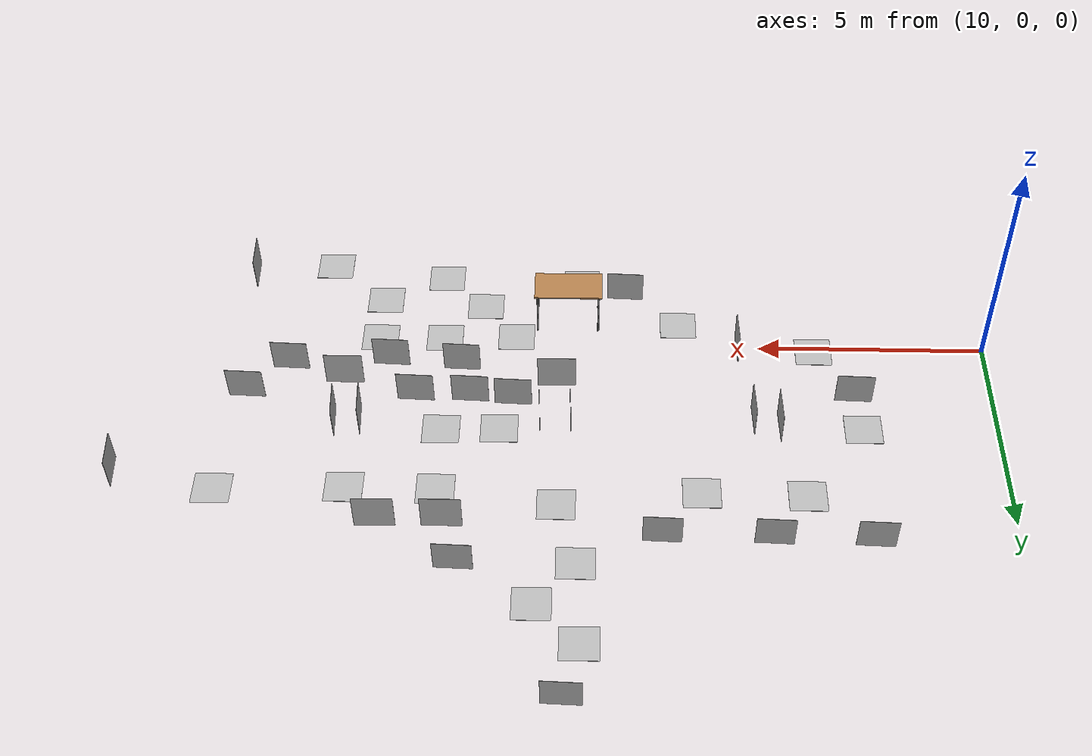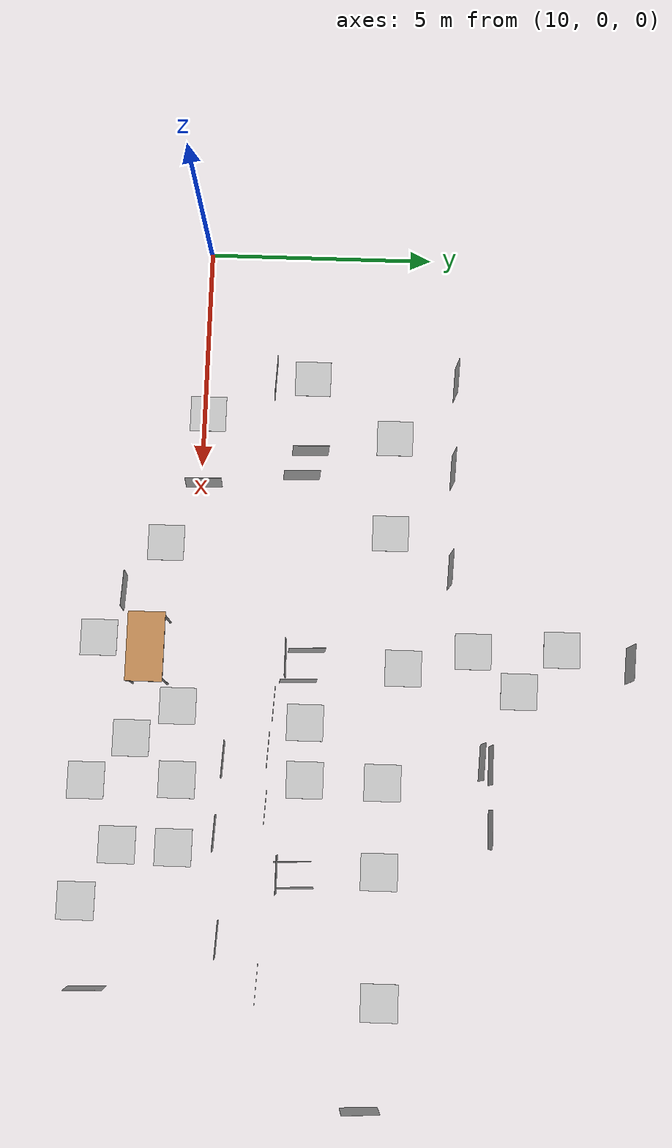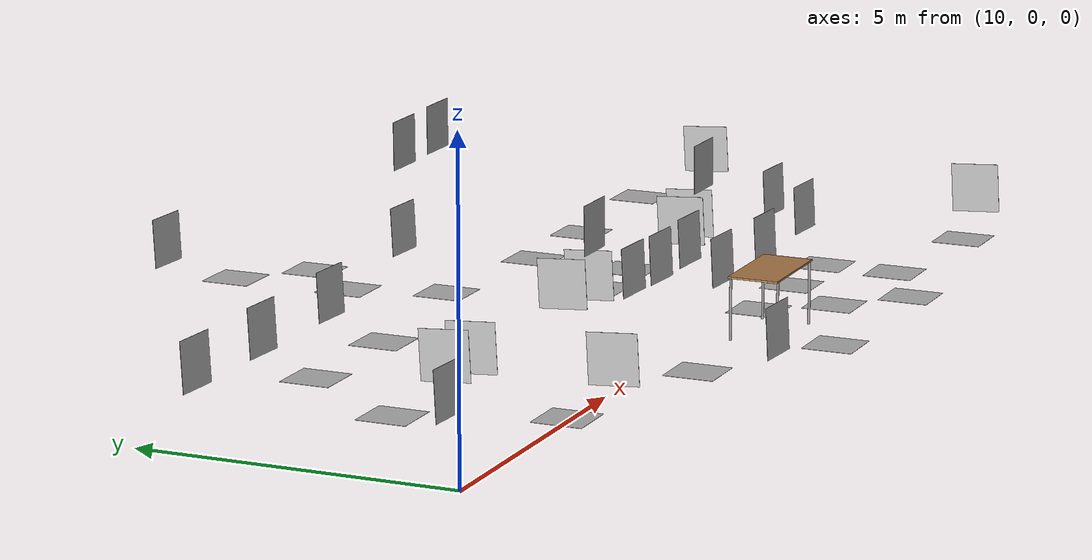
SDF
<sdf version="1.6">
 <world name="factory">
  <model name="table">
   <static>1</static>
   <link name="link">
    <collision name="surface">
     <pose>0 0 1 0 -0 0</pose>
     <geometry><box><size>1.5 0.8 0.03</size></box></geometry>
     <surface><friction><ode><mu>0.6</mu><mu2>0.6</mu2></ode></friction></surface>
    </collision>
    <visual name="visual1">
     <pose>0 0 1 0 -0 0</pose>
     <geometry><box><size>1.5 0.8 0.03</size></box></geometry>
     <material>
      <script><uri>file://media/materials/scripts/gazebo.material</uri><name>Gazebo/Wood</name></script>
     </material>
    </visual>
    <collision name="front_left_leg">
     <pose>0.68 0.38 0.5 0 -0 0</pose>
     <geometry><cylinder><radius>0.02</radius><length>1</length></cylinder></geometry>
    </collision>
    <visual name="front_left_leg">
     <pose>0.68 0.38 0.5 0 -0 0</pose>
     <geometry><cylinder><radius>0.02</radius><length>1</length></cylinder></geometry>
     <material>
      <script><uri>file://media/materials/scripts/gazebo.material</uri><name>Gazebo/Grey</name></script>
     </material>
    </visual>
    <collision name="front_right_leg">
     <pose>0.68 -0.38 0.5 0 -0 0</pose>
     <geometry><cylinder><radius>0.02</radius><length>1</length></cylinder></geometry>
    </collision>
    <visual name="front_right_leg">
     <pose>0.68 -0.38 0.5 0 -0 0</pose>
     <geometry><cylinder><radius>0.02</radius><length>1</length></cylinder></geometry>
     <material>
      <script><uri>file://media/materials/scripts/gazebo.material</uri><name>Gazebo/Grey</name></script>
     </material>
    </visual>
    <collision name="back_right_leg">
     <pose>-0.68 -0.38 0.5 0 -0 0</pose>
     <geometry><cylinder><radius>0.02</radius><length>1</length></cylinder></geometry>
    </collision>
    <visual name="back_right_leg">
     <pose>-0.68 -0.38 0.5 0 -0 0</pose>
     <geometry><cylinder><radius>0.02</radius><length>1</length></cylinder></geometry>
     <material>
      <script><uri>file://media/materials/scripts/gazebo.material</uri><name>Gazebo/Grey</name></script>
     </material>
    </visual>
    <collision name="back_left_leg">
     <pose>-0.68 0.38 0.5 0 -0 0</pose>
     <geometry><cylinder><radius>0.02</radius><length>1</length></cylinder></geometry>
    </collision>
    <visual name="back_left_leg">
     <pose>-0.68 0.38 0.5 0 -0 0</pose>
     <geometry><cylinder><radius>0.02</radius><length>1</length></cylinder></geometry>
     <material>
      <script><uri>file://media/materials/scripts/gazebo.material</uri><name>Gazebo/Grey</name></script>
     </material>
    </visual>
   </link>
   <pose>19.256 -0.907717 0 0 -0 0</pose>
  </model>
  <model name="kalibr_tag_clone_clone_clone">
   <static>1</static>
   <link name="link">
    <inertial>
     <mass>0.1</mass>
     <inertia>
      <ixx>0.000166667</ixx>
      <iyy>0.000166667</iyy>
      <izz>0.000166667</izz>
      <ixy>0</ixy>
      <ixz>0</ixz>
      <iyz>0</iyz>
     </inertia>
    </inertial>
    <collision name="collision"><geometry><box><size>0.8 0.8 0.005</size></box></geometry></collision>
    <visual name="visual">
     <geometry><box><size>0.8 0.8 0.005</size></box></geometry>
     <material>
      <script>
       <uri>model://kalibr_tag/materials/scripts</uri>
       <uri>model://kalibr_tag/materials/textures</uri>
       <name>Kalibr_tag/Diffuse</name>
      </script>
     </material>
    </visual>
   </link>
   <pose>28.7132 3.94409 0.427439 1.58264 0.057467 1.61346</pose>
  </model>
  <model name="kalibr_tag_clone_clone_clone_clone">
   <static>1</static>
   <link name="link">
    <inertial>
     <mass>0.1</mass>
     <inertia>
      <ixx>0.000166667</ixx>
      <iyy>0.000166667</iyy>
      <izz>0.000166667</izz>
      <ixy>0</ixy>
      <ixz>0</ixz>
      <iyz>0</iyz>
     </inertia>
    </inertial>
    <collision name="collision"><geometry><box><size>0.8 0.8 0.005</size></box></geometry></collision>
    <visual name="visual">
     <geometry><box><size>0.8 0.8 0.005</size></box></geometry>
     <material>
      <script>
       <uri>model://kalibr_tag/materials/scripts</uri>
       <uri>model://kalibr_tag/materials/textures</uri>
       <name>Kalibr_tag/Diffuse</name>
      </script>
     </material>
    </visual>
   </link>
   <pose>24.2288 2.429 0.42669 1.58264 0.057467 1.61346</pose>
  </model>
  <model name="kalibr_tag_clone_0_clone_clone_clone_0">
   <static>1</static>
   <link name="link">
    <inertial>
     <mass>0.1</mass>
     <inertia>
      <ixx>0.000166667</ixx>
      <iyy>0.000166667</iyy>
      <izz>0.000166667</izz>
      <ixy>0</ixy>
      <ixz>0</ixz>
      <iyz>0</iyz>
     </inertia>
    </inertial>
    <collision name="collision"><geometry><box><size>0.8 0.8 0.005</size></box></geometry></collision>
    <visual name="visual">
     <geometry><box><size>0.8 0.8 0.005</size></box></geometry>
     <material>
      <script>
       <uri>model://kalibr_tag/materials/scripts</uri>
       <uri>model://kalibr_tag/materials/textures</uri>
       <name>Kalibr_tag/Diffuse</name>
      </script>
     </material>
    </visual>
   </link>
   <pose>19.4255 4.62272 -0.000701 0 -0 0</pose>
  </model>
  <model name="kalibr_tag_clone_0_clone_clone_clone_1">
   <static>1</static>
   <link name="link">
    <inertial>
     <mass>0.1</mass>
     <inertia>
      <ixx>0.000166667</ixx>
      <iyy>0.000166667</iyy>
      <izz>0.000166667</izz>
      <ixy>0</ixy>
      <ixz>0</ixz>
      <iyz>0</iyz>
     </inertia>
    </inertial>
    <collision name="collision"><geometry><box><size>0.8 0.8 0.005</size></box></geometry></collision>
    <visual name="visual">
     <geometry><box><size>0.8 0.8 0.005</size></box></geometry>
     <material>
      <script>
       <uri>model://kalibr_tag/materials/scripts</uri>
       <uri>model://kalibr_tag/materials/textures</uri>
       <name>Kalibr_tag/Diffuse</name>
      </script>
     </material>
    </visual>
   </link>
   <pose>26.5857 4.30103 -0.000701 0 -0 0</pose>
  </model>
  <model name="kalibr_tag_clone_clone_clone_clone_0">
   <static>1</static>
   <link name="link">
    <inertial>
     <mass>0.1</mass>
     <inertia>
      <ixx>0.000166667</ixx>
      <iyy>0.000166667</iyy>
      <izz>0.000166667</izz>
      <ixy>0</ixy>
      <ixz>0</ixz>
      <iyz>0</iyz>
     </inertia>
    </inertial>
    <collision name="collision"><geometry><box><size>0.8 0.8 0.005</size></box></geometry></collision>
    <visual name="visual">
     <geometry><box><size>0.8 0.8 0.005</size></box></geometry>
     <material>
      <script>
       <uri>model://kalibr_tag/materials/scripts</uri>
       <uri>model://kalibr_tag/materials/textures</uri>
       <name>Kalibr_tag/Diffuse</name>
      </script>
     </material>
    </visual>
   </link>
   <pose>26.2036 1.70677 0.447006 1.51246 0.006312 -0.053047</pose>
  </model>
  <model name="kalibr_tag_clone_0_clone_clone_clone_0_clone">
   <static>1</static>
   <link name="link">
    <inertial>
     <mass>0.1</mass>
     <inertia>
      <ixx>0.000166667</ixx>
      <iyy>0.000166667</iyy>
      <izz>0.000166667</izz>
      <ixy>0</ixy>
      <ixz>0</ixz>
      <iyz>0</iyz>
     </inertia>
    </inertial>
    <collision name="collision"><geometry><box><size>0.8 0.8 0.005</size></box></geometry></collision>
    <visual name="visual">
     <geometry><box><size>0.8 0.8 0.005</size></box></geometry>
     <material>
      <script>
       <uri>model://kalibr_tag/materials/scripts</uri>
       <uri>model://kalibr_tag/materials/textures</uri>
       <name>Kalibr_tag/Diffuse</name>
      </script>
     </material>
    </visual>
   </link>
   <pose>14.2182 4.30383 -0.000701 0 -0 0</pose>
  </model>
  <model name="kalibr_tag_clone_clone_clone_clone_clone_clone_clone_4">
   <static>1</static>
   <link name="link">
    <inertial>
     <mass>0.1</mass>
     <inertia>
      <ixx>0.000166667</ixx>
      <iyy>0.000166667</iyy>
      <izz>0.000166667</izz>
      <ixy>0</ixy>
      <ixz>0</ixz>
      <iyz>0</iyz>
     </inertia>
    </inertial>
    <collision name="collision"><geometry><box><size>0.8 0.8 0.005</size></box></geometry></collision>
    <visual name="visual">
     <geometry><box><size>0.8 0.8 0.005</size></box></geometry>
     <material>
      <script>
       <uri>model://kalibr_tag/materials/scripts</uri>
       <uri>model://kalibr_tag/materials/textures</uri>
       <name>Kalibr_tag/Diffuse</name>
      </script>
     </material>
    </visual>
   </link>
   <pose>26.3847 -1.80032 0.78584 1.58128 0.057725 1.58982</pose>
  </model>
  <model name="kalibr_tag_clone_0_clone_clone_clone_4_clone_1">
   <static>1</static>
   <link name="link">
    <inertial>
     <mass>0.1</mass>
     <inertia>
      <ixx>0.000166667</ixx>
      <iyy>0.000166667</iyy>
      <izz>0.000166667</izz>
      <ixy>0</ixy>
      <ixz>0</ixz>
      <iyz>0</iyz>
     </inertia>
    </inertial>
    <collision name="collision"><geometry><box><size>0.8 0.8 0.005</size></box></geometry></collision>
    <visual name="visual">
     <geometry><box><size>0.8 0.8 0.005</size></box></geometry>
     <material>
      <script>
       <uri>model://kalibr_tag/materials/scripts</uri>
       <uri>model://kalibr_tag/materials/textures</uri>
       <name>Kalibr_tag/Diffuse</name>
      </script>
     </material>
    </visual>
   </link>
   <pose>23.4666 -0.22493 -0.000701 0 -0 0</pose>
  </model>
  <model name="kalibr_tag_clone_clone_clone_clone_0_clone">
   <static>1</static>
   <link name="link">
    <inertial>
     <mass>0.1</mass>
     <inertia>
      <ixx>0.000166667</ixx>
      <iyy>0.000166667</iyy>
      <izz>0.000166667</izz>
      <ixy>0</ixy>
      <ixz>0</ixz>
      <iyz>0</iyz>
     </inertia>
    </inertial>
    <collision name="collision"><geometry><box><size>0.8 0.8 0.005</size></box></geometry></collision>
    <visual name="visual">
     <geometry><box><size>0.8 0.8 0.005</size></box></geometry>
     <material>
      <script>
       <uri>model://kalibr_tag/materials/scripts</uri>
       <uri>model://kalibr_tag/materials/textures</uri>
       <name>Kalibr_tag/Diffuse</name>
      </script>
     </material>
    </visual>
   </link>
   <pose>22.5233 1.74624 0.441118 1.51246 0.006312 -0.053047</pose>
  </model>
  <model name="kalibr_tag_clone_clone_clone_clone_clone_1">
   <static>1</static>
   <link name="link">
    <inertial>
     <mass>0.1</mass>
     <inertia>
      <ixx>0.000166667</ixx>
      <iyy>0.000166667</iyy>
      <izz>0.000166667</izz>
      <ixy>0</ixy>
      <ixz>0</ixz>
      <iyz>0</iyz>
     </inertia>
    </inertial>
    <collision name="collision"><geometry><box><size>0.8 0.8 0.005</size></box></geometry></collision>
    <visual name="visual">
     <geometry><box><size>0.8 0.8 0.005</size></box></geometry>
     <material>
      <script>
       <uri>model://kalibr_tag/materials/scripts</uri>
       <uri>model://kalibr_tag/materials/textures</uri>
       <name>Kalibr_tag/Diffuse</name>
      </script>
     </material>
    </visual>
   </link>
   <pose>19.8233 2.34669 0.42669 1.58264 0.057467 1.61346</pose>
  </model>
  <model name="kalibr_tag_clone_0_clone_clone_clone_8_clone">
   <static>1</static>
   <link name="link">
    <inertial>
     <mass>0.1</mass>
     <inertia>
      <ixx>0.000166667</ixx>
      <iyy>0.000166667</iyy>
      <izz>0.000166667</izz>
      <ixy>0</ixy>
      <ixz>0</ixz>
      <iyz>0</iyz>
     </inertia>
    </inertial>
    <collision name="collision"><geometry><box><size>0.8 0.8 0.005</size></box></geometry></collision>
    <visual name="visual">
     <geometry><box><size>0.8 0.8 0.005</size></box></geometry>
     <material>
      <script>
       <uri>model://kalibr_tag/materials/scripts</uri>
       <uri>model://kalibr_tag/materials/textures</uri>
       <name>Kalibr_tag/Diffuse</name>
      </script>
     </material>
    </visual>
   </link>
   <pose>13.7783 0.077556 -0.000701 0 -0 0</pose>
  </model>
  <model name="kalibr_tag_clone_clone_clone_clone_0_clone_clone">
   <static>1</static>
   <link name="link">
    <inertial>
     <mass>0.1</mass>
     <inertia>
      <ixx>0.000166667</ixx>
      <iyy>0.000166667</iyy>
      <izz>0.000166667</izz>
      <ixy>0</ixy>
      <ixz>0</ixz>
      <iyz>0</iyz>
     </inertia>
    </inertial>
    <collision name="collision"><geometry><box><size>0.8 0.8 0.005</size></box></geometry></collision>
    <visual name="visual">
     <geometry><box><size>0.8 0.8 0.005</size></box></geometry>
     <material>
      <script>
       <uri>model://kalibr_tag/materials/scripts</uri>
       <uri>model://kalibr_tag/materials/textures</uri>
       <name>Kalibr_tag/Diffuse</name>
      </script>
     </material>
    </visual>
   </link>
   <pose>21.5696 0.796001 0.441118 1.51246 0.006312 -0.053047</pose>
  </model>
  <model name="kalibr_tag_clone_0_clone_clone_clone_4_clone_3">
   <static>1</static>
   <link name="link">
    <inertial>
     <mass>0.1</mass>
     <inertia>
      <ixx>0.000166667</ixx>
      <iyy>0.000166667</iyy>
      <izz>0.000166667</izz>
      <ixy>0</ixy>
      <ixz>0</ixz>
      <iyz>0</iyz>
     </inertia>
    </inertial>
    <collision name="collision"><geometry><box><size>0.8 0.8 0.005</size></box></geometry></collision>
    <visual name="visual">
     <geometry><box><size>0.8 0.8 0.005</size></box></geometry>
     <material>
      <script>
       <uri>model://kalibr_tag/materials/scripts</uri>
       <uri>model://kalibr_tag/materials/textures</uri>
       <name>Kalibr_tag/Diffuse</name>
      </script>
     </material>
    </visual>
   </link>
   <pose>21.1404 -1.26221 0.010014 0 -0 0</pose>
  </model>
  <model name="kalibr_tag_clone_0_clone_clone_clone_clone_7">
   <static>1</static>
   <link name="link">
    <inertial>
     <mass>0.1</mass>
     <inertia>
      <ixx>0.000166667</ixx>
      <iyy>0.000166667</iyy>
      <izz>0.000166667</izz>
      <ixy>0</ixy>
      <ixz>0</ixz>
      <iyz>0</iyz>
     </inertia>
    </inertial>
    <collision name="collision"><geometry><box><size>0.8 0.8 0.005</size></box></geometry></collision>
    <visual name="visual">
     <geometry><box><size>0.8 0.8 0.005</size></box></geometry>
     <material>
      <script>
       <uri>model://kalibr_tag/materials/scripts</uri>
       <uri>model://kalibr_tag/materials/textures</uri>
       <name>Kalibr_tag/Diffuse</name>
      </script>
     </material>
    </visual>
   </link>
   <pose>21.9413 4.23978 -0.000701 0 -0 0</pose>
  </model>
  <model name="kalibr_tag_clone_0_clone_clone_clone_clone_8">
   <static>1</static>
   <link name="link">
    <inertial>
     <mass>0.1</mass>
     <inertia>
      <ixx>0.000166667</ixx>
      <iyy>0.000166667</iyy>
      <izz>0.000166667</izz>
      <ixy>0</ixy>
      <ixz>0</ixz>
      <iyz>0</iyz>
     </inertia>
    </inertial>
    <collision name="collision"><geometry><box><size>0.8 0.8 0.005</size></box></geometry></collision>
    <visual name="visual">
     <geometry><box><size>0.8 0.8 0.005</size></box></geometry>
     <material>
      <script>
       <uri>model://kalibr_tag/materials/scripts</uri>
       <uri>model://kalibr_tag/materials/textures</uri>
       <name>Kalibr_tag/Diffuse</name>
      </script>
     </material>
    </visual>
   </link>
   <pose>23.8494 4.22056 -0.000701 0 -0 0</pose>
  </model>
  <model name="kalibr_tag_clone_0_clone_clone_clone_clone_9">
   <static>1</static>
   <link name="link">
    <inertial>
     <mass>0.1</mass>
     <inertia>
      <ixx>0.000166667</ixx>
      <iyy>0.000166667</iyy>
      <izz>0.000166667</izz>
      <ixy>0</ixy>
      <ixz>0</ixz>
      <iyz>0</iyz>
     </inertia>
    </inertial>
    <collision name="collision"><geometry><box><size>0.8 0.8 0.005</size></box></geometry></collision>
    <visual name="visual">
     <geometry><box><size>0.8 0.8 0.005</size></box></geometry>
     <material>
      <script>
       <uri>model://kalibr_tag/materials/scripts</uri>
       <uri>model://kalibr_tag/materials/textures</uri>
       <name>Kalibr_tag/Diffuse</name>
      </script>
     </material>
    </visual>
   </link>
   <pose>16.4107 4.26115 -0.000701 0 -0 0</pose>
  </model>
  <model name="kalibr_tag_clone_0_clone_clone_clone_7_clone_5">
   <static>1</static>
   <link name="link">
    <inertial>
     <mass>0.1</mass>
     <inertia>
      <ixx>0.000166667</ixx>
      <iyy>0.000166667</iyy>
      <izz>0.000166667</izz>
      <ixy>0</ixy>
      <ixz>0</ixz>
      <iyz>0</iyz>
     </inertia>
    </inertial>
    <collision name="collision"><geometry><box><size>0.8 0.8 0.005</size></box></geometry></collision>
    <visual name="visual">
     <geometry><box><size>0.8 0.8 0.005</size></box></geometry>
     <material>
      <script>
       <uri>model://kalibr_tag/materials/scripts</uri>
       <uri>model://kalibr_tag/materials/textures</uri>
       <name>Kalibr_tag/Diffuse</name>
      </script>
     </material>
    </visual>
   </link>
   <pose>12.885 2.41278 -0.000701 0 -0 0</pose>
  </model>
  <model name="kalibr_tag_clone_0_clone_clone_clone_7_clone_6">
   <static>1</static>
   <link name="link">
    <inertial>
     <mass>0.1</mass>
     <inertia>
      <ixx>0.000166667</ixx>
      <iyy>0.000166667</iyy>
      <izz>0.000166667</izz>
      <ixy>0</ixy>
      <ixz>0</ixz>
      <iyz>0</iyz>
     </inertia>
    </inertial>
    <collision name="collision"><geometry><box><size>0.8 0.8 0.005</size></box></geometry></collision>
    <visual name="visual">
     <geometry><box><size>0.8 0.8 0.005</size></box></geometry>
     <material>
      <script>
       <uri>model://kalibr_tag/materials/scripts</uri>
       <uri>model://kalibr_tag/materials/textures</uri>
       <name>Kalibr_tag/Diffuse</name>
      </script>
     </material>
    </visual>
   </link>
   <pose>21.9335 2.55086 -0.000701 0 -0 0</pose>
  </model>
  <model name="kalibr_tag_clone_0_clone_clone_clone_7_clone_7">
   <static>1</static>
   <link name="link">
    <inertial>
     <mass>0.1</mass>
     <inertia>
      <ixx>0.000166667</ixx>
      <iyy>0.000166667</iyy>
      <izz>0.000166667</izz>
      <ixy>0</ixy>
      <ixz>0</ixz>
      <iyz>0</iyz>
     </inertia>
    </inertial>
    <collision name="collision"><geometry><box><size>0.8 0.8 0.005</size></box></geometry></collision>
    <visual name="visual">
     <geometry><box><size>0.8 0.8 0.005</size></box></geometry>
     <material>
      <script>
       <uri>model://kalibr_tag/materials/scripts</uri>
       <uri>model://kalibr_tag/materials/textures</uri>
       <name>Kalibr_tag/Diffuse</name>
      </script>
     </material>
    </visual>
   </link>
   <pose>20.6861 2.51192 -0.000701 0 -0 0</pose>
  </model>
  <model name="kalibr_tag_clone_clone_clone_clone_clone_1_clone">
   <static>1</static>
   <link name="link">
    <inertial>
     <mass>0.1</mass>
     <inertia>
      <ixx>0.000166667</ixx>
      <iyy>0.000166667</iyy>
      <izz>0.000166667</izz>
      <ixy>0</ixy>
      <ixz>0</ixz>
      <iyz>0</iyz>
     </inertia>
    </inertial>
    <collision name="collision"><geometry><box><size>0.8 0.8 0.005</size></box></geometry></collision>
    <visual name="visual">
     <geometry><box><size>0.8 0.8 0.005</size></box></geometry>
     <material>
      <script>
       <uri>model://kalibr_tag/materials/scripts</uri>
       <uri>model://kalibr_tag/materials/textures</uri>
       <name>Kalibr_tag/Diffuse</name>
      </script>
     </material>
    </visual>
   </link>
   <pose>23.6804 2.36835 0.42669 1.58264 0.057467 1.61346</pose>
  </model>
  <model name="kalibr_tag_clone_0_clone_clone_clone_clone_10_clone_14">
   <static>1</static>
   <link name="link">
    <inertial>
     <mass>0.1</mass>
     <inertia>
      <ixx>0.000166667</ixx>
      <iyy>0.000166667</iyy>
      <izz>0.000166667</izz>
      <ixy>0</ixy>
      <ixz>0</ixz>
      <iyz>0</iyz>
     </inertia>
    </inertial>
    <collision name="collision"><geometry><box><size>0.8 0.8 0.005</size></box></geometry></collision>
    <visual name="visual">
     <geometry><box><size>0.8 0.8 0.005</size></box></geometry>
     <material>
      <script>
       <uri>model://kalibr_tag/materials/scripts</uri>
       <uri>model://kalibr_tag/materials/textures</uri>
       <name>Kalibr_tag/Diffuse</name>
      </script>
     </material>
    </visual>
   </link>
   <pose>16.7712 -0.722978 -0.000701 0 -0 0</pose>
  </model>
  <model name="kalibr_tag_clone_0_clone_clone_clone_clone_10_clone_30">
   <static>1</static>
   <link name="link">
    <inertial>
     <mass>0.1</mass>
     <inertia>
      <ixx>0.000166667</ixx>
      <iyy>0.000166667</iyy>
      <izz>0.000166667</izz>
      <ixy>0</ixy>
      <ixz>0</ixz>
      <iyz>0</iyz>
     </inertia>
    </inertial>
    <collision name="collision"><geometry><box><size>0.8 0.8 0.005</size></box></geometry></collision>
    <visual name="visual">
     <geometry><box><size>0.8 0.8 0.005</size></box></geometry>
     <material>
      <script>
       <uri>model://kalibr_tag/materials/scripts</uri>
       <uri>model://kalibr_tag/materials/textures</uri>
       <name>Kalibr_tag/Diffuse</name>
      </script>
     </material>
    </visual>
   </link>
   <pose>23.4454 -1.44308 -0.000701 0 -0 0</pose>
  </model>
  <model name="kalibr_tag_clone_clone_clone_clone_0_clone_clone_clone">
   <static>1</static>
   <link name="link">
    <inertial>
     <mass>0.1</mass>
     <inertia>
      <ixx>0.000166667</ixx>
      <iyy>0.000166667</iyy>
      <izz>0.000166667</izz>
      <ixy>0</ixy>
      <ixz>0</ixz>
      <iyz>0</iyz>
     </inertia>
    </inertial>
    <collision name="collision"><geometry><box><size>0.8 0.8 0.005</size></box></geometry></collision>
    <visual name="visual">
     <geometry><box><size>0.8 0.8 0.005</size></box></geometry>
     <material>
      <script>
       <uri>model://kalibr_tag/materials/scripts</uri>
       <uri>model://kalibr_tag/materials/textures</uri>
       <name>Kalibr_tag/Diffuse</name>
      </script>
     </material>
    </visual>
   </link>
   <pose>17.966 -1.52317 0.441118 1.51246 0.006312 -0.053047</pose>
  </model>
  <model name="kalibr_tag_clone_0_clone_clone_clone_4_clone_3_clone_0">
   <static>1</static>
   <link name="link">
    <inertial>
     <mass>0.1</mass>
     <inertia>
      <ixx>0.000166667</ixx>
      <iyy>0.000166667</iyy>
      <izz>0.000166667</izz>
      <ixy>0</ixy>
      <ixz>0</ixz>
      <iyz>0</iyz>
     </inertia>
    </inertial>
    <collision name="collision"><geometry><box><size>0.8 0.8 0.005</size></box></geometry></collision>
    <visual name="visual">
     <geometry><box><size>0.8 0.8 0.005</size></box></geometry>
     <material>
      <script>
       <uri>model://kalibr_tag/materials/scripts</uri>
       <uri>model://kalibr_tag/materials/textures</uri>
       <name>Kalibr_tag/Diffuse</name>
      </script>
     </material>
    </visual>
   </link>
   <pose>18.9476 -2.08928 0.010014 0 -0 0</pose>
  </model>
  <model name="kalibr_tag_clone_0_clone_clone_clone_4_clone_3_clone_1">
   <static>1</static>
   <link name="link">
    <inertial>
     <mass>0.1</mass>
     <inertia>
      <ixx>0.000166667</ixx>
      <iyy>0.000166667</iyy>
      <izz>0.000166667</izz>
      <ixy>0</ixy>
      <ixz>0</ixz>
      <iyz>0</iyz>
     </inertia>
    </inertial>
    <collision name="collision"><geometry><box><size>0.8 0.8 0.005</size></box></geometry></collision>
    <visual name="visual">
     <geometry><box><size>0.8 0.8 0.005</size></box></geometry>
     <material>
      <script>
       <uri>model://kalibr_tag/materials/scripts</uri>
       <uri>model://kalibr_tag/materials/textures</uri>
       <name>Kalibr_tag/Diffuse</name>
      </script>
     </material>
    </visual>
   </link>
   <pose>22.0837 -2.19102 0.010014 0 -0 0</pose>
  </model>
  <model name="kalibr_tag_clone_0_clone_clone_clone_4_clone_3_clone_2">
   <static>1</static>
   <link name="link">
    <inertial>
     <mass>0.1</mass>
     <inertia>
      <ixx>0.000166667</ixx>
      <iyy>0.000166667</iyy>
      <izz>0.000166667</izz>
      <ixy>0</ixy>
      <ixz>0</ixz>
      <iyz>0</iyz>
     </inertia>
    </inertial>
    <collision name="collision"><geometry><box><size>0.8 0.8 0.005</size></box></geometry></collision>
    <visual name="visual">
     <geometry><box><size>0.8 0.8 0.005</size></box></geometry>
     <material>
      <script>
       <uri>model://kalibr_tag/materials/scripts</uri>
       <uri>model://kalibr_tag/materials/textures</uri>
       <name>Kalibr_tag/Diffuse</name>
      </script>
     </material>
    </visual>
   </link>
   <pose>22.0129 -0.220516 0.010014 0 -0 0</pose>
  </model>
  <model name="kalibr_tag_clone_0_clone_clone_clone_4_clone_3_clone_3">
   <static>1</static>
   <link name="link">
    <inertial>
     <mass>0.1</mass>
     <inertia>
      <ixx>0.000166667</ixx>
      <iyy>0.000166667</iyy>
      <izz>0.000166667</izz>
      <ixy>0</ixy>
      <ixz>0</ixz>
      <iyz>0</iyz>
     </inertia>
    </inertial>
    <collision name="collision"><geometry><box><size>0.8 0.8 0.005</size></box></geometry></collision>
    <visual name="visual">
     <geometry><box><size>0.8 0.8 0.005</size></box></geometry>
     <material>
      <script>
       <uri>model://kalibr_tag/materials/scripts</uri>
       <uri>model://kalibr_tag/materials/textures</uri>
       <name>Kalibr_tag/Diffuse</name>
      </script>
     </material>
    </visual>
   </link>
   <pose>20.4079 -0.2806 0.010014 0 -0 0</pose>
  </model>
  <model name="kalibr_tag_clone_clone_clone_clone_0_clone_clone_0">
   <static>1</static>
   <link name="link">
    <inertial>
     <mass>0.1</mass>
     <inertia>
      <ixx>0.000166667</ixx>
      <iyy>0.000166667</iyy>
      <izz>0.000166667</izz>
      <ixy>0</ixy>
      <ixz>0</ixz>
      <iyz>0</iyz>
     </inertia>
    </inertial>
    <collision name="collision"><geometry><box><size>0.8 0.8 0.005</size></box></geometry></collision>
    <visual name="visual">
     <geometry><box><size>0.8 0.8 0.005</size></box></geometry>
     <material>
      <script>
       <uri>model://kalibr_tag/materials/scripts</uri>
       <uri>model://kalibr_tag/materials/textures</uri>
       <name>Kalibr_tag/Diffuse</name>
      </script>
     </material>
    </visual>
   </link>
   <pose>21.3396 1.75491 0.441118 1.51246 0.006312 -0.053047</pose>
  </model>
  <model name="kalibr_tag_clone_clone_clone_clone_0_clone_clone_1">
   <static>1</static>
   <link name="link">
    <inertial>
     <mass>0.1</mass>
     <inertia>
      <ixx>0.000166667</ixx>
      <iyy>0.000166667</iyy>
      <izz>0.000166667</izz>
      <ixy>0</ixy>
      <ixz>0</ixz>
      <iyz>0</iyz>
     </inertia>
    </inertial>
    <collision name="collision"><geometry><box><size>0.8 0.8 0.005</size></box></geometry></collision>
    <visual name="visual">
     <geometry><box><size>0.8 0.8 0.005</size></box></geometry>
     <material>
      <script>
       <uri>model://kalibr_tag/materials/scripts</uri>
       <uri>model://kalibr_tag/materials/textures</uri>
       <name>Kalibr_tag/Diffuse</name>
      </script>
     </material>
    </visual>
   </link>
   <pose>20.4072 1.83672 0.441118 1.51246 0.006312 -0.053047</pose>
  </model>
  <model name="kalibr_tag_clone_clone_clone_clone_clone_1_clone_clone">
   <static>1</static>
   <link name="link">
    <inertial>
     <mass>0.1</mass>
     <inertia>
      <ixx>0.000166667</ixx>
      <iyy>0.000166667</iyy>
      <izz>0.000166667</izz>
      <ixy>0</ixy>
      <ixz>0</ixz>
      <iyz>0</iyz>
     </inertia>
    </inertial>
    <collision name="collision"><geometry><box><size>0.8 0.8 0.005</size></box></geometry></collision>
    <visual name="visual">
     <geometry><box><size>0.8 0.8 0.005</size></box></geometry>
     <material>
      <script>
       <uri>model://kalibr_tag/materials/scripts</uri>
       <uri>model://kalibr_tag/materials/textures</uri>
       <name>Kalibr_tag/Diffuse</name>
      </script>
     </material>
    </visual>
   </link>
   <pose>19.153 2.5116 0.42669 1.58264 0.057467 1.61346</pose>
  </model>
  <model name="kalibr_tag_clone_clone_clone_clone_clone_1_clone_clone_0">
   <static>1</static>
   <link name="link">
    <inertial>
     <mass>0.1</mass>
     <inertia>
      <ixx>0.000166667</ixx>
      <iyy>0.000166667</iyy>
      <izz>0.000166667</izz>
      <ixy>0</ixy>
      <ixz>0</ixz>
      <iyz>0</iyz>
     </inertia>
    </inertial>
    <collision name="collision"><geometry><box><size>0.8 0.8 0.005</size></box></geometry></collision>
    <visual name="visual">
     <geometry><box><size>0.8 0.8 0.005</size></box></geometry>
     <material>
      <script>
       <uri>model://kalibr_tag/materials/scripts</uri>
       <uri>model://kalibr_tag/materials/textures</uri>
       <name>Kalibr_tag/Diffuse</name>
      </script>
     </material>
    </visual>
   </link>
   <pose>14.6884 2.43265 0.42669 1.58264 0.057467 1.61346</pose>
  </model>
  <model name="kalibr_tag_clone_clone_clone_clone_clone_1_clone_clone_1">
   <static>1</static>
   <link name="link">
    <inertial>
     <mass>0.1</mass>
     <inertia>
      <ixx>0.000166667</ixx>
      <iyy>0.000166667</iyy>
      <izz>0.000166667</izz>
      <ixy>0</ixy>
      <ixz>0</ixz>
      <iyz>0</iyz>
     </inertia>
    </inertial>
    <collision name="collision"><geometry><box><size>0.8 0.8 0.005</size></box></geometry></collision>
    <visual name="visual">
     <geometry><box><size>0.8 0.8 0.005</size></box></geometry>
     <material>
      <script>
       <uri>model://kalibr_tag/materials/scripts</uri>
       <uri>model://kalibr_tag/materials/textures</uri>
       <name>Kalibr_tag/Diffuse</name>
      </script>
     </material>
    </visual>
   </link>
   <pose>15.2439 2.26023 0.42669 1.58264 0.057467 1.61346</pose>
  </model>
  <model name="kalibr_tag_clone_clone_clone_clone_clone_1_clone_clone_0_clone_clone_0">
   <static>1</static>
   <link name="link">
    <inertial>
     <mass>0.1</mass>
     <inertia>
      <ixx>0.000166667</ixx>
      <iyy>0.000166667</iyy>
      <izz>0.000166667</izz>
      <ixy>0</ixy>
      <ixz>0</ixz>
      <iyz>0</iyz>
     </inertia>
    </inertial>
    <collision name="collision"><geometry><box><size>0.8 0.8 0.005</size></box></geometry></collision>
    <visual name="visual">
     <geometry><box><size>0.8 0.8 0.005</size></box></geometry>
     <material>
      <script>
       <uri>model://kalibr_tag/materials/scripts</uri>
       <uri>model://kalibr_tag/materials/textures</uri>
       <name>Kalibr_tag/Diffuse</name>
      </script>
     </material>
    </visual>
   </link>
   <pose>15.4877 0.097613 0.42669 1.58264 0.057467 1.61346</pose>
  </model>
  <model name="kalibr_tag_clone_clone_clone_clone_0_clone_clone_clone_0">
   <static>1</static>
   <link name="link">
    <inertial>
     <mass>0.1</mass>
     <inertia>
      <ixx>0.000166667</ixx>
      <iyy>0.000166667</iyy>
      <izz>0.000166667</izz>
      <ixy>0</ixy>
      <ixz>0</ixz>
      <iyz>0</iyz>
     </inertia>
    </inertial>
    <collision name="collision"><geometry><box><size>0.8 0.8 0.005</size></box></geometry></collision>
    <visual name="visual">
     <geometry><box><size>0.8 0.8 0.005</size></box></geometry>
     <material>
      <script>
       <uri>model://kalibr_tag/materials/scripts</uri>
       <uri>model://kalibr_tag/materials/textures</uri>
       <name>Kalibr_tag/Diffuse</name>
      </script>
     </material>
    </visual>
   </link>
   <pose>23.1347 0.67662 0.441118 1.51246 0.006312 -0.053047</pose>
  </model>
  <model name="kalibr_tag_clone_clone_clone_clone_0_clone_clone_clone_0_clone">
   <static>1</static>
   <link name="link">
    <inertial>
     <mass>0.1</mass>
     <inertia>
      <ixx>0.000166667</ixx>
      <iyy>0.000166667</iyy>
      <izz>0.000166667</izz>
      <ixy>0</ixy>
      <ixz>0</ixz>
      <iyz>0</iyz>
     </inertia>
    </inertial>
    <collision name="collision"><geometry><box><size>0.8 0.8 0.005</size></box></geometry></collision>
    <visual name="visual">
     <geometry><box><size>0.8 0.8 0.005</size></box></geometry>
     <material>
      <script>
       <uri>model://kalibr_tag/materials/scripts</uri>
       <uri>model://kalibr_tag/materials/textures</uri>
       <name>Kalibr_tag/Diffuse</name>
      </script>
     </material>
    </visual>
   </link>
   <pose>25.3439 0.82915 0.441118 1.51246 0.006312 -0.053047</pose>
  </model>
  <model name="kalibr_tag_clone_0_clone_clone_clone_4_clone_2_clone_clone">
   <static>1</static>
   <link name="link">
    <inertial>
     <mass>0.1</mass>
     <inertia>
      <ixx>0.000166667</ixx>
      <iyy>0.000166667</iyy>
      <izz>0.000166667</izz>
      <ixy>0</ixy>
      <ixz>0</ixz>
      <iyz>0</iyz>
     </inertia>
    </inertial>
    <collision name="collision"><geometry><box><size>0.8 0.8 0.005</size></box></geometry></collision>
    <visual name="visual">
     <geometry><box><size>0.8 0.8 0.005</size></box></geometry>
     <material>
      <script>
       <uri>model://kalibr_tag/materials/scripts</uri>
       <uri>model://kalibr_tag/materials/textures</uri>
       <name>Kalibr_tag/Diffuse</name>
      </script>
     </material>
    </visual>
   </link>
   <pose>24.6404 -2.18703 0.352879 0 -0 0</pose>
  </model>
  <model name="kalibr_tag_clone_clone_clone_clone_clone_clone_clone_0_clone_clone_5_clone_1">
   <static>1</static>
   <link name="link">
    <inertial>
     <mass>0.1</mass>
     <inertia>
      <ixx>0.000166667</ixx>
      <iyy>0.000166667</iyy>
      <izz>0.000166667</izz>
      <ixy>0</ixy>
      <ixz>0</ixz>
      <iyz>0</iyz>
     </inertia>
    </inertial>
    <collision name="collision"><geometry><box><size>0.8 0.8 0.005</size></box></geometry></collision>
    <visual name="visual">
     <geometry><box><size>0.8 0.8 0.005</size></box></geometry>
     <material>
      <script>
       <uri>model://kalibr_tag/materials/scripts</uri>
       <uri>model://kalibr_tag/materials/textures</uri>
       <name>Kalibr_tag/Diffuse</name>
      </script>
     </material>
    </visual>
   </link>
   <pose>12.9629 5.62573 0.418062 1.62908 -0.00671 3.09537</pose>
  </model>
  <model name="kalibr_tag_clone_clone_clone_clone_clone_clone_clone_0_clone_clone_5_clone_2">
   <static>1</static>
   <link name="link">
    <inertial>
     <mass>0.1</mass>
     <inertia>
      <ixx>0.000166667</ixx>
      <iyy>0.000166667</iyy>
      <izz>0.000166667</izz>
      <ixy>0</ixy>
      <ixz>0</ixz>
      <iyz>0</iyz>
     </inertia>
    </inertial>
    <collision name="collision"><geometry><box><size>0.8 0.8 0.005</size></box></geometry></collision>
    <visual name="visual">
     <geometry><box><size>0.8 0.8 0.005</size></box></geometry>
     <material>
      <script>
       <uri>model://kalibr_tag/materials/scripts</uri>
       <uri>model://kalibr_tag/materials/textures</uri>
       <name>Kalibr_tag/Diffuse</name>
      </script>
     </material>
    </visual>
   </link>
   <pose>15.0036 5.59632 0.418062 1.62908 -0.00671 3.09537</pose>
  </model>
  <model name="kalibr_tag_clone_clone_clone_clone_clone_clone_clone_0_clone_clone_5_clone_3">
   <static>1</static>
   <link name="link">
    <inertial>
     <mass>0.1</mass>
     <inertia>
      <ixx>0.000166667</ixx>
      <iyy>0.000166667</iyy>
      <izz>0.000166667</izz>
      <ixy>0</ixy>
      <ixz>0</ixz>
      <iyz>0</iyz>
     </inertia>
    </inertial>
    <collision name="collision"><geometry><box><size>0.8 0.8 0.005</size></box></geometry></collision>
    <visual name="visual">
     <geometry><box><size>0.8 0.8 0.005</size></box></geometry>
     <material>
      <script>
       <uri>model://kalibr_tag/materials/scripts</uri>
       <uri>model://kalibr_tag/materials/textures</uri>
       <name>Kalibr_tag/Diffuse</name>
      </script>
     </material>
    </visual>
   </link>
   <pose>17.2671 5.58753 0.418062 1.62908 -0.00671 3.09537</pose>
  </model>
  <model name="kalibr_tag_clone_clone_clone_clone_clone_clone_clone_0_clone_clone_5_clone_4">
   <static>1</static>
   <link name="link">
    <inertial>
     <mass>0.1</mass>
     <inertia>
      <ixx>0.000166667</ixx>
      <iyy>0.000166667</iyy>
      <izz>0.000166667</izz>
      <ixy>0</ixy>
      <ixz>0</ixz>
      <iyz>0</iyz>
     </inertia>
    </inertial>
    <collision name="collision"><geometry><box><size>0.8 0.8 0.005</size></box></geometry></collision>
    <visual name="visual">
     <geometry><box><size>0.8 0.8 0.005</size></box></geometry>
     <material>
      <script>
       <uri>model://kalibr_tag/materials/scripts</uri>
       <uri>model://kalibr_tag/materials/textures</uri>
       <name>Kalibr_tag/Diffuse</name>
      </script>
     </material>
    </visual>
   </link>
   <pose>19.2336 9.51743 0.418062 1.62908 -0.00671 3.09537</pose>
  </model>
  <model name="kalibr_tag_clone_0_clone_clone_clone_0_clone_0">
   <static>1</static>
   <link name="link">
    <inertial>
     <mass>0.1</mass>
     <inertia>
      <ixx>0.000166667</ixx>
      <iyy>0.000166667</iyy>
      <izz>0.000166667</izz>
      <ixy>0</ixy>
      <ixz>0</ixz>
      <iyz>0</iyz>
     </inertia>
    </inertial>
    <collision name="collision"><geometry><box><size>0.8 0.8 0.005</size></box></geometry></collision>
    <visual name="visual">
     <geometry><box><size>0.8 0.8 0.005</size></box></geometry>
     <material>
      <script>
       <uri>model://kalibr_tag/materials/scripts</uri>
       <uri>model://kalibr_tag/materials/textures</uri>
       <name>Kalibr_tag/Diffuse</name>
      </script>
     </material>
    </visual>
   </link>
   <pose>19.0066 6.14981 -0.000701 0 -0 0</pose>
  </model>
  <model name="kalibr_tag_clone_0_clone_clone_clone_0_clone_1">
   <static>1</static>
   <link name="link">
    <inertial>
     <mass>0.1</mass>
     <inertia>
      <ixx>0.000166667</ixx>
      <iyy>0.000166667</iyy>
      <izz>0.000166667</izz>
      <ixy>0</ixy>
      <ixz>0</ixz>
      <iyz>0</iyz>
     </inertia>
    </inertial>
    <collision name="collision"><geometry><box><size>0.8 0.8 0.005</size></box></geometry></collision>
    <visual name="visual">
     <geometry><box><size>0.8 0.8 0.005</size></box></geometry>
     <material>
      <script>
       <uri>model://kalibr_tag/materials/scripts</uri>
       <uri>model://kalibr_tag/materials/textures</uri>
       <name>Kalibr_tag/Diffuse</name>
      </script>
     </material>
    </visual>
   </link>
   <pose>19.8613 7.16882 -0.000701 0 -0 0</pose>
  </model>
  <model name="kalibr_tag_clone_0_clone_clone_clone_0_clone_2">
   <static>1</static>
   <link name="link">
    <inertial>
     <mass>0.1</mass>
     <inertia>
      <ixx>0.000166667</ixx>
      <iyy>0.000166667</iyy>
      <izz>0.000166667</izz>
      <ixy>0</ixy>
      <ixz>0</ixz>
      <iyz>0</iyz>
     </inertia>
    </inertial>
    <collision name="collision"><geometry><box><size>0.8 0.8 0.005</size></box></geometry></collision>
    <visual name="visual">
     <geometry><box><size>0.8 0.8 0.005</size></box></geometry>
     <material>
      <script>
       <uri>model://kalibr_tag/materials/scripts</uri>
       <uri>model://kalibr_tag/materials/textures</uri>
       <name>Kalibr_tag/Diffuse</name>
      </script>
     </material>
    </visual>
   </link>
   <pose>18.9114 8.10178 -0.000701 0 -0 0</pose>
  </model>
  <model name="kalibr_tag_clone_clone_clone_clone_clone_clone_clone_2_clone_clone_clone_0">
   <static>1</static>
   <link name="link">
    <inertial>
     <mass>0.1</mass>
     <inertia>
      <ixx>0.000166667</ixx>
      <iyy>0.000166667</iyy>
      <izz>0.000166667</izz>
      <ixy>0</ixy>
      <ixz>0</ixz>
      <iyz>0</iyz>
     </inertia>
    </inertial>
    <collision name="collision"><geometry><box><size>0.8 0.8 0.005</size></box></geometry></collision>
    <visual name="visual">
     <geometry><box><size>0.8 0.8 0.005</size></box></geometry>
     <material>
      <script>
       <uri>model://kalibr_tag/materials/scripts</uri>
       <uri>model://kalibr_tag/materials/textures</uri>
       <name>Kalibr_tag/Diffuse</name>
      </script>
     </material>
    </visual>
   </link>
   <pose>13.0379 1.60914 0.425094 1.62908 -0.00671 3.09537</pose>
  </model>
  <model name="kalibr_tag_clone_clone_clone_clone_clone_clone_clone_0_clone_clone_5_clone_4_clone">
   <static>1</static>
   <link name="link">
    <inertial>
     <mass>0.1</mass>
     <inertia>
      <ixx>0.000166667</ixx>
      <iyy>0.000166667</iyy>
      <izz>0.000166667</izz>
      <ixy>0</ixy>
      <ixz>0</ixz>
      <iyz>0</iyz>
     </inertia>
    </inertial>
    <collision name="collision"><geometry><box><size>0.8 0.8 0.005</size></box></geometry></collision>
    <visual name="visual">
     <geometry><box><size>0.8 0.8 0.005</size></box></geometry>
     <material>
      <script>
       <uri>model://kalibr_tag/materials/scripts</uri>
       <uri>model://kalibr_tag/materials/textures</uri>
       <name>Kalibr_tag/Diffuse</name>
      </script>
     </material>
    </visual>
   </link>
   <pose>21.5961 6.38866 1.81719 1.5857 -0.008097 3.14109</pose>
  </model>
  <model name="kalibr_tag_clone_clone_clone_clone_clone_clone_clone_0_clone_clone_5_clone_4_clone_0">
   <static>1</static>
   <link name="link">
    <inertial>
     <mass>0.1</mass>
     <inertia>
      <ixx>0.000166667</ixx>
      <iyy>0.000166667</iyy>
      <izz>0.000166667</izz>
      <ixy>0</ixy>
      <ixz>0</ixz>
      <iyz>0</iyz>
     </inertia>
    </inertial>
    <collision name="collision"><geometry><box><size>0.8 0.8 0.005</size></box></geometry></collision>
    <visual name="visual">
     <geometry><box><size>0.8 0.8 0.005</size></box></geometry>
     <material>
      <script>
       <uri>model://kalibr_tag/materials/scripts</uri>
       <uri>model://kalibr_tag/materials/textures</uri>
       <name>Kalibr_tag/Diffuse</name>
      </script>
     </material>
    </visual>
   </link>
   <pose>21.4479 6.34795 0.418062 1.62908 -0.00671 3.09537</pose>
  </model>
  <model name="kalibr_tag_clone_clone_clone_clone_clone_clone_clone_0_clone_clone_5_clone_4_clone_clone">
   <static>1</static>
   <link name="link">
    <inertial>
     <mass>0.1</mass>
     <inertia>
      <ixx>0.000166667</ixx>
      <iyy>0.000166667</iyy>
      <izz>0.000166667</izz>
      <ixy>0</ixy>
      <ixz>0</ixz>
      <iyz>0</iyz>
     </inertia>
    </inertial>
    <collision name="collision"><geometry><box><size>0.8 0.8 0.005</size></box></geometry></collision>
    <visual name="visual">
     <geometry><box><size>0.8 0.8 0.005</size></box></geometry>
     <material>
      <script>
       <uri>model://kalibr_tag/materials/scripts</uri>
       <uri>model://kalibr_tag/materials/textures</uri>
       <name>Kalibr_tag/Diffuse</name>
      </script>
     </material>
    </visual>
   </link>
   <pose>19.4581 2.09832 1.32017 1.5857 -0.008097 3.14109</pose>
  </model>
  <model name="kalibr_tag_clone_clone_clone_clone_clone_clone_clone_0_clone_clone_5_clone_4_clone_clone_clone">
   <static>1</static>
   <link name="link">
    <inertial>
     <mass>0.1</mass>
     <inertia>
      <ixx>0.000166667</ixx>
      <iyy>0.000166667</iyy>
      <izz>0.000166667</izz>
      <ixy>0</ixy>
      <ixz>0</ixz>
      <iyz>0</iyz>
     </inertia>
    </inertial>
    <collision name="collision"><geometry><box><size>0.8 0.8 0.005</size></box></geometry></collision>
    <visual name="visual">
     <geometry><box><size>0.8 0.8 0.005</size></box></geometry>
     <material>
      <script>
       <uri>model://kalibr_tag/materials/scripts</uri>
       <uri>model://kalibr_tag/materials/textures</uri>
       <name>Kalibr_tag/Diffuse</name>
      </script>
     </material>
    </visual>
   </link>
   <pose>23.9446 2.08034 1.32017 1.5857 -0.008097 3.14109</pose>
  </model>
  <model name="kalibr_tag_clone_clone_clone_clone_clone_clone_clone_0_clone_clone_5_clone_4_clone_clone_0">
   <static>1</static>
   <link name="link">
    <inertial>
     <mass>0.1</mass>
     <inertia>
      <ixx>0.000166667</ixx>
      <iyy>0.000166667</iyy>
      <izz>0.000166667</izz>
      <ixy>0</ixy>
      <ixz>0</ixz>
      <iyz>0</iyz>
     </inertia>
    </inertial>
    <collision name="collision"><geometry><box><size>0.8 0.8 0.005</size></box></geometry></collision>
    <visual name="visual">
     <geometry><box><size>0.8 0.8 0.005</size></box></geometry>
     <material>
      <script>
       <uri>model://kalibr_tag/materials/scripts</uri>
       <uri>model://kalibr_tag/materials/textures</uri>
       <name>Kalibr_tag/Diffuse</name>
      </script>
     </material>
    </visual>
   </link>
   <pose>22.8922 6.40331 1.81719 1.5857 -0.008097 3.14109</pose>
  </model>
 </world>
</sdf>
